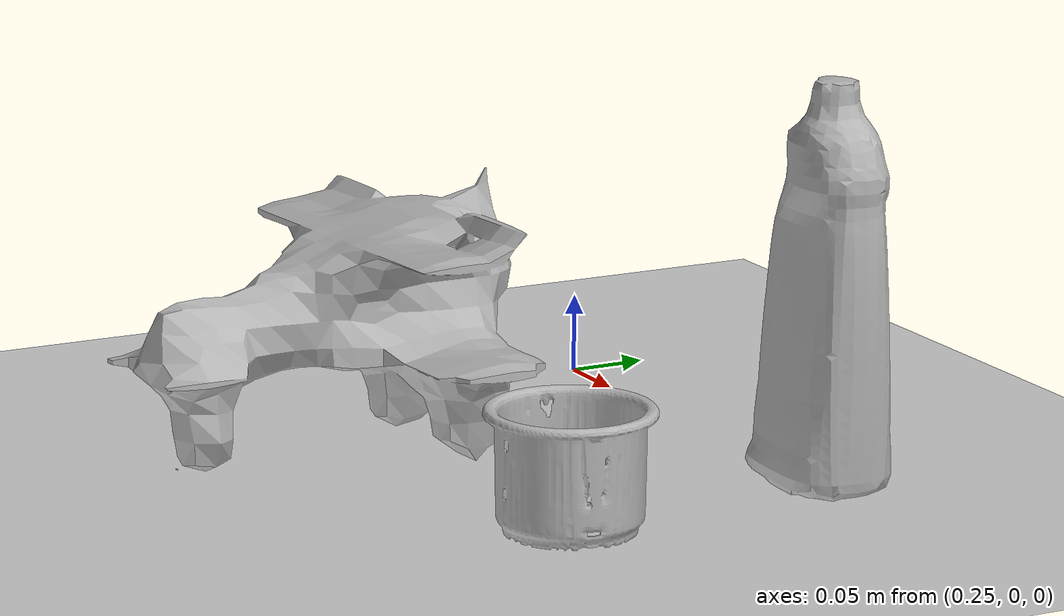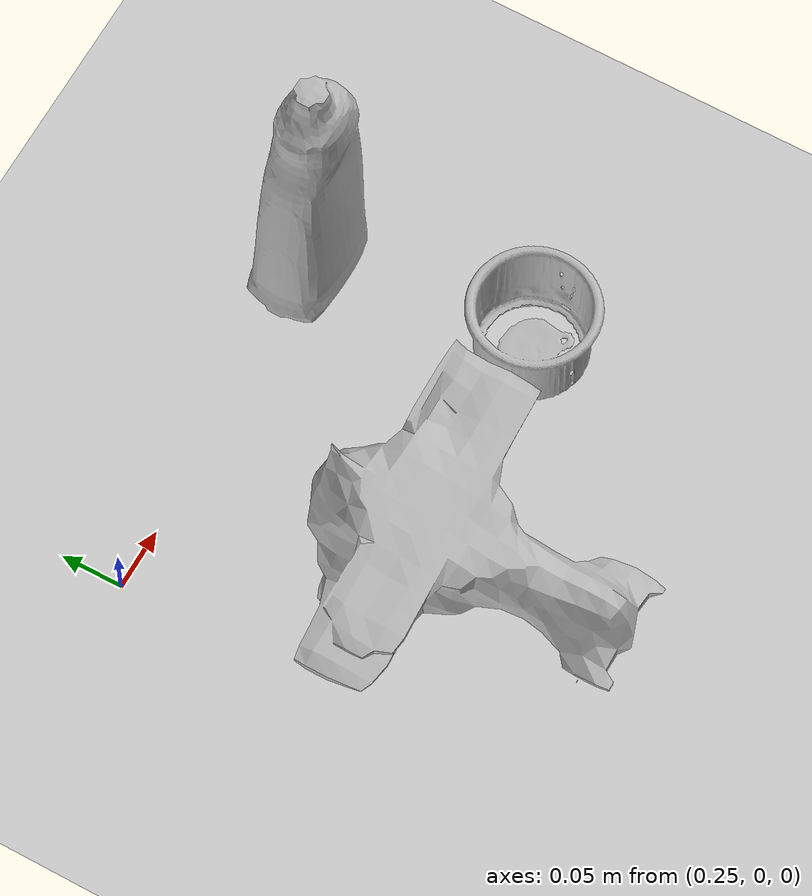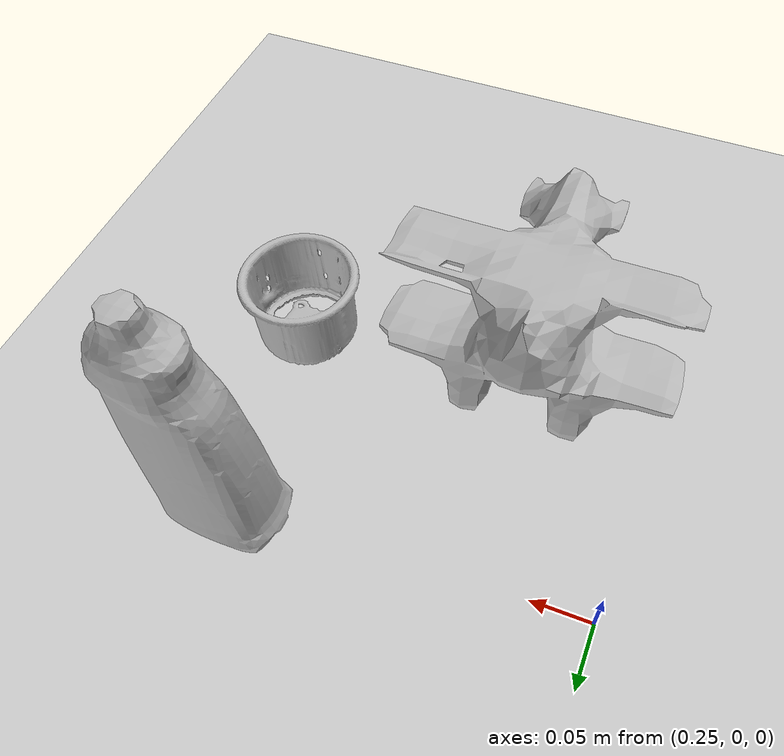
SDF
<sdf version="1.7">
 <world name="default">
  <model name="ground_plane">
   <static>1</static>
   <link name="link">
    <collision name="collision">
     <geometry><plane><normal>0 0 1</normal><size>100 100</size></plane></geometry>
     <surface>
      <contact><collide_bitmask>65535</collide_bitmask></contact>
      <friction><ode><mu>100</mu><mu2>50</mu2></ode></friction>
     </surface>
    </collision>
    <visual name="visual">
     <cast_shadows>0</cast_shadows>
     <geometry><plane><normal>0 0 1</normal><size>100 100</size></plane></geometry>
     <material>
      <script><uri>file://media/materials/scripts/gazebo.material</uri><name>Gazebo/Grey</name></script>
     </material>
    </visual>
   </link>
  </model>
  <gravity>0 0 -9.8</gravity>
  <magnetic_field>6e-06 2.3e-05 -4.2e-05</magnetic_field>
  <atmosphere type="adiabatic"/>
  <physics type="ode">
   <max_step_size>0.001</max_step_size>
   <real_time_factor>1</real_time_factor>
   <real_time_update_rate>1000</real_time_update_rate>
  </physics>
  <scene><ambient>0.4 0.4 0.4 1</ambient><background>0.7 0.7 0.7 1</background><shadows>1</shadows></scene>
  <spherical_coordinates>
   <surface_model>EARTH_WGS84</surface_model>
   <latitude_deg>0</latitude_deg>
   <longitude_deg>0</longitude_deg>
   <elevation>0</elevation>
   <heading_deg>0</heading_deg>
  </spherical_coordinates>
  <light name="user_point_light_0" type="point">
   <pose>2.3043 0.093688 1 0 -0 0</pose>
   <diffuse>0.5 0.5 0.5 1</diffuse>
   <specular>0.1 0.1 0.1 1</specular>
   <attenuation>
    <range>20</range>
    <constant>0.01</constant>
    <linear>0.01</linear>
    <quadratic>0.001</quadratic>
   </attenuation>
   <cast_shadows>0</cast_shadows>
   <direction>0 0 -1</direction>
   <spot><inner_angle>0</inner_angle><outer_angle>0</outer_angle><falloff>0</falloff></spot>
  </light>
  <model name="bleach_cleanser">
   <static>0</static>
   <link name="link">
    <inertial>
     <pose>-0.017139 0.011574 0.099698 -3.07106 0.000113 1.56037</pose>
     <mass>0.000972343</mass>
     <inertia>
      <ixx>4.56613e-06</ixx>
      <ixy>-1.26903e-22</ixy>
      <ixz>7.80825e-22</ixz>
      <iyy>4.25149e-06</iyy>
      <iyz>-1.59888e-22</iyz>
      <izz>7.65292e-07</izz>
     </inertia>
    </inertial>
    <collision name="collision">
     <geometry><mesh><uri>model://021_bleach_cleanser/google_16k/low_poly.obj</uri></mesh></geometry>
    </collision>
    <visual name="visual">
     <geometry><mesh><uri>model://021_bleach_cleanser/google_16k/textured.obj</uri></mesh></geometry>
     <material>
      <script><uri>model://021_bleach_cleanser/bleach_cleanser.material</uri><name>bleach_cleanser</name></script>
     </material>
    </visual>
   </link>
   <pose>0.566543 -0.001029 5.6e-05 -0.001332 0.001139 -0.025759</pose>
  </model>
  <model name="j_cups">
   <static>0</static>
   <link name="link">
    <inertial>
     <pose>-0.023169 -0.016288 0.03647 -0.449346 -1.52663 0.521609</pose>
     <mass>5.45863e-05</mass>
     <inertia>
      <ixx>9.38954e-08</ixx>
      <ixy>-2.16774e-23</ixy>
      <ixz>4.00586e-24</ixz>
      <iyy>8.1665e-08</iyy>
      <iyz>-4.93112e-24</iyz>
      <izz>8.06467e-08</izz>
     </inertia>
    </inertial>
    <collision name="collision">
     <geometry><mesh><uri>model://065-j_cups/google_16k/low_poly.obj</uri></mesh></geometry>
     <surface><friction><ode><mu>10000</mu><mu2>10000</mu2></ode></friction></surface>
    </collision>
    <visual name="visual">
     <geometry><mesh><uri>model://065-j_cups/google_16k/textured.obj</uri></mesh></geometry>
     <material><script><uri>model://065-j_cups/j_cups.material</uri><name>j_cups</name></script></material>
    </visual>
   </link>
   <pose>0.589499 -0.155254 0.000166 0.000846 -0.000278 -0.154365</pose>
  </model>
  <model name="a_toy_airplane">
   <static>0</static>
   <link name="link">
    <inertial>
     <pose>0.035725 0.030807 0.090923 0.07561 -1.4145 -1.58572</pose>
     <mass>0.00156458</mass>
     <inertia>
      <ixx>9.43995e-06</ixx>
      <ixy>3.6285e-23</ixy>
      <ixz>1.08954e-22</ixz>
      <iyy>7.94083e-06</iyy>
      <iyz>-9.78651e-23</iyz>
      <izz>5.37123e-06</izz>
     </inertia>
    </inertial>
    <collision name="collision">
     <geometry><mesh><uri>model://072-a_toy_airplane/google_16k/low_poly.obj</uri></mesh></geometry>
    </collision>
    <visual name="visual">
     <geometry><mesh><uri>model://072-a_toy_airplane/google_16k/textured.obj</uri></mesh></geometry>
     <material>
      <script><uri>model://072-a_toy_airplane/a_toy_airplane.material</uri><name>a_toy_airplane</name></script>
     </material>
    </visual>
   </link>
   <pose>0.328049 -0.23908 -0.00152 -0.011529 -0.037662 0.007223</pose>
  </model>
 </world>
</sdf>
